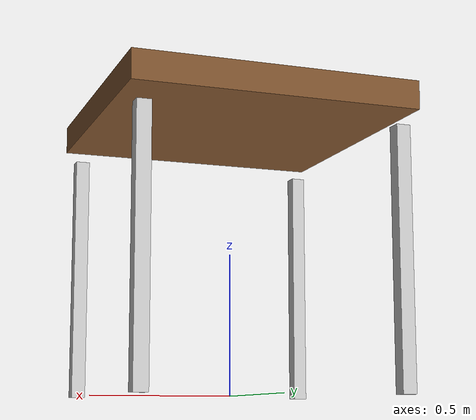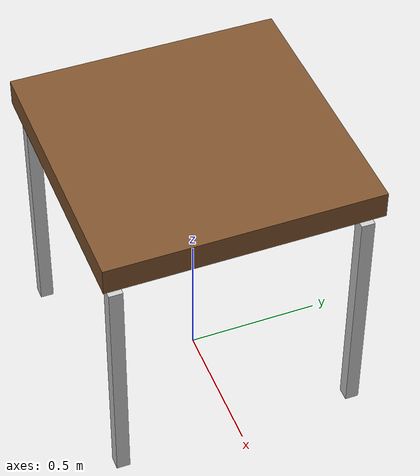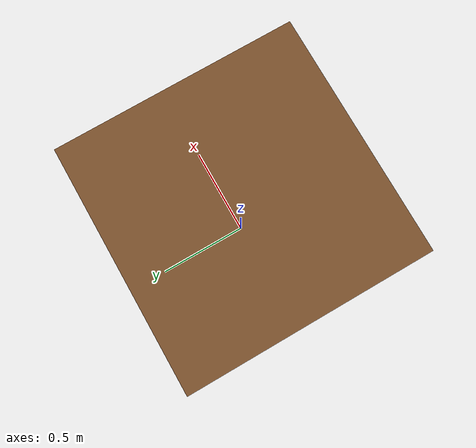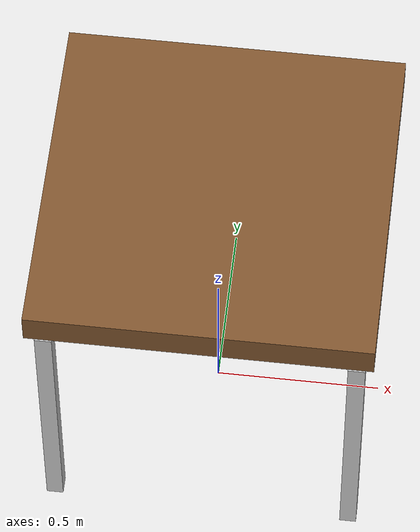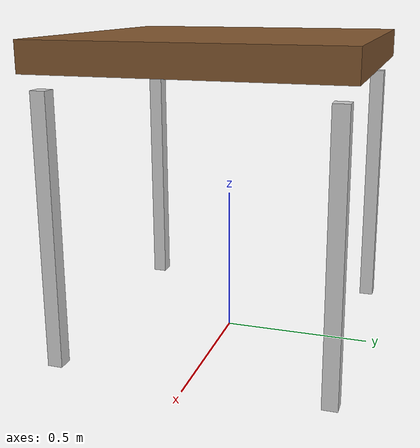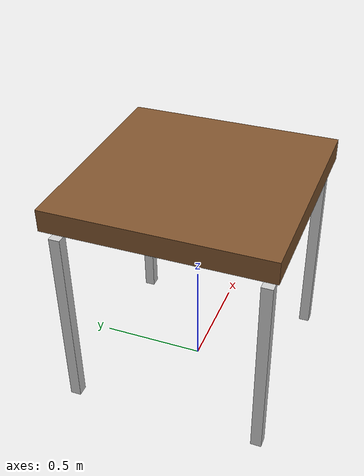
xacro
<?xml version="1.0" encoding="UTF-8"?>
<robot xmlns:xacro="http://wiki.ros.org/xacro" name="rrbot">

  <!-- copy and paste the contents of "rrbot_macro.xacro" here -->
  <xacro:include filename="materials.xacro" />
  <xacro:include filename="table_macro.xacro"/>

  <!-- create link fixed to the "world" -->
  <link name="world" />

  <!-- create the first robot -->
  <xacro:table prefix="table_" parent="world">
    <!-- position robot in the world -->
    <origin xyz="0 0 1" rpy="0 0 0" />
  </xacro:table>

</robot>

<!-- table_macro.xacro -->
<robot xmlns:xacro="http://www.ros.org/wiki/xacro">

  <xacro:macro name="table" params="prefix parent *origin">

    <!-- Constants for robot dimensions -->
    <xacro:property name="table_width" value="1" />
    <xacro:property name="table_length" value = "1"/>
    <xacro:property name="table_height" value = "1"/>
    <xacro:property name="table_thickness" value = "0.1"/>

    <xacro:property name="leg_length" value="${table_height - table_thickness}" /> <!-- base_link -->
    <xacro:property name="leg_radius" value="0.05" /> <!-- link1 -->

    <joint name="${prefix}top_joint" type="fixed">
      <xacro:insert_block name="origin" />
      <parent link="${parent}" />
      <child link="${prefix}top" />
    </joint>

    <!-- Top -->
    <link name="${prefix}top">
      <visual>
        <origin xyz="0 0 0" rpy="0 0 0" />
        <geometry>
          <box size="${table_length} ${table_width} ${table_thickness }" />
        </geometry>
        <material name="brown" />
      </visual>
    </link>

    <joint name="${prefix}joint1" type="fixed">
      <parent link="${prefix}top" />
      <child link="${prefix}leg1" />
      <origin xyz = "${table_length / 2 - leg_radius} ${table_width / 2 - leg_radius} ${(table_height -table_thickness) - table_height} " rpy = "0 0 0"/>
      <axis xyz="0 1 0" />
    </joint>

    <!-- leg 1 -->
    <link name="${prefix}leg1">
      <visual>
        <origin xyz="0 0 ${(- table_height + table_thickness)/2 }" rpy="0 0 0" />
        <geometry>
          <box size="${leg_radius} ${leg_radius} ${leg_length}" />
        </geometry>
        <material name="light_grey" />
      </visual>
    </link>

    <!-- Leg2  -->

    <joint name="${prefix}joint2" type="fixed">
      <parent link="${prefix}top" />
      <child link="${prefix}leg2" />
       <origin xyz = "${-(table_length / 2 - leg_radius)} ${table_width / 2 - leg_radius} ${(table_height -table_thickness) -1}" rpy = "0 0 0"/>
      <axis xyz="0 1 0" />
    </joint>

    <link name="${prefix}leg2">
      <visual>
        <origin xyz="0 0 ${(- table_height + table_thickness)/2}" rpy="0 0 0" />
        <geometry>
          <box size="${leg_radius} ${leg_radius} ${leg_length}" />
        </geometry>
        <material name="light_grey" />
      </visual>
    </link>

    <!-- Leg3  -->

    <joint name="${prefix}joint3" type="fixed">
      <parent link="${prefix}top" />
      <child link="${prefix}leg3" />
       <origin xyz = "${-(table_length / 2 - leg_radius)} ${-(table_width / 2 - leg_radius)} ${(table_height -table_thickness) - 1}" rpy = "0 0 0"/>
      <axis xyz="0 1 0" />
    </joint>

    <link name="${prefix}leg3">
      <visual>
        <origin xyz="0 0 ${(- table_height + table_thickness)/2}" rpy="0 0 0" />
        <geometry>
          <box size="${leg_radius} ${leg_radius} ${leg_length}" />
        </geometry>
        <material name="light_grey" />
      </visual>
    </link>

    <!-- Leg4  -->

    <joint name="${prefix}joint4" type="fixed">
      <parent link="${prefix}top" />
      <child link="${prefix}leg4" />
       <origin xyz = "${table_length / 2 - leg_radius} ${-(table_width / 2 - leg_radius)} ${(table_height -table_thickness) -1}" rpy = "0 0 0"/>
      <axis xyz="0 1 0" />
    </joint>

    <link name="${prefix}leg4">
      <visual>
        <origin xyz="0 0 ${(- table_height + table_thickness)/2}" rpy="0 0 0" />
        <geometry>
          <box size="${leg_radius} ${leg_radius} ${leg_length}" />
        </geometry>
        <material name="light_grey" />
      </visual>
    </link>

  </xacro:macro>

</robot>
